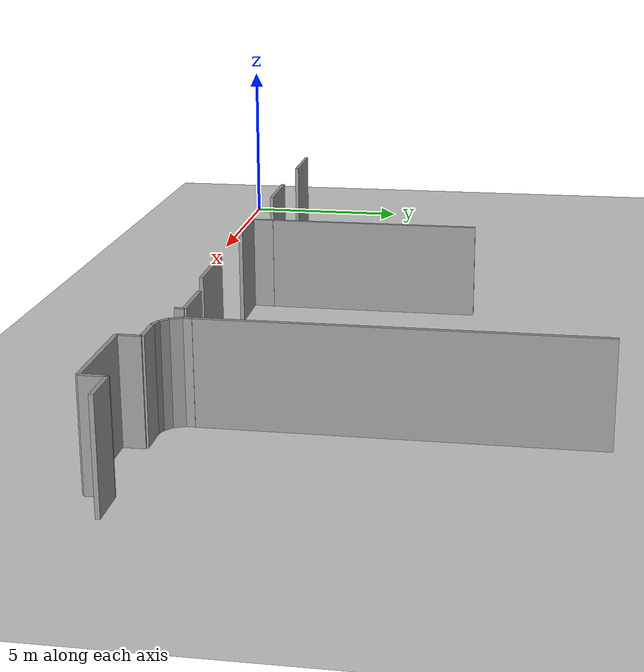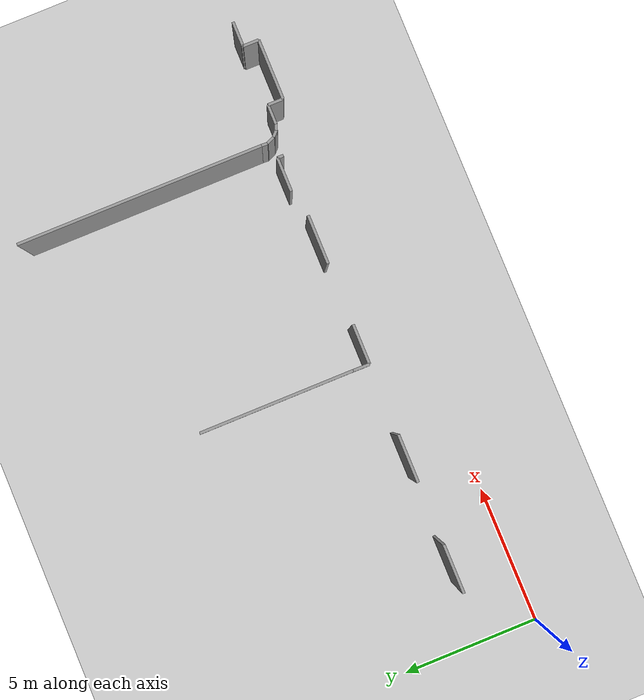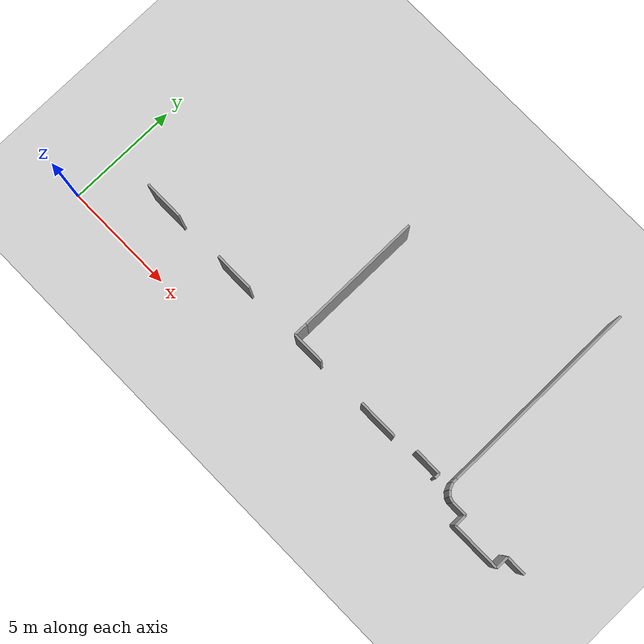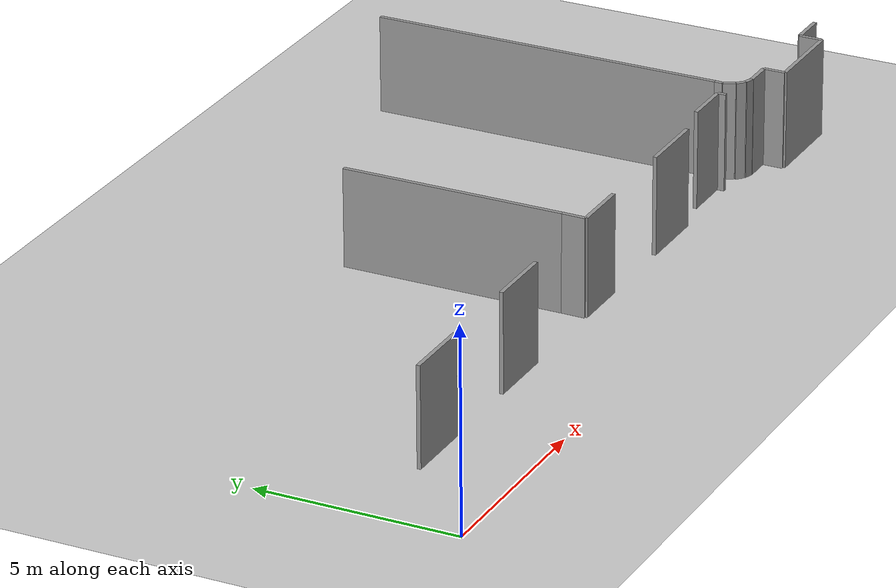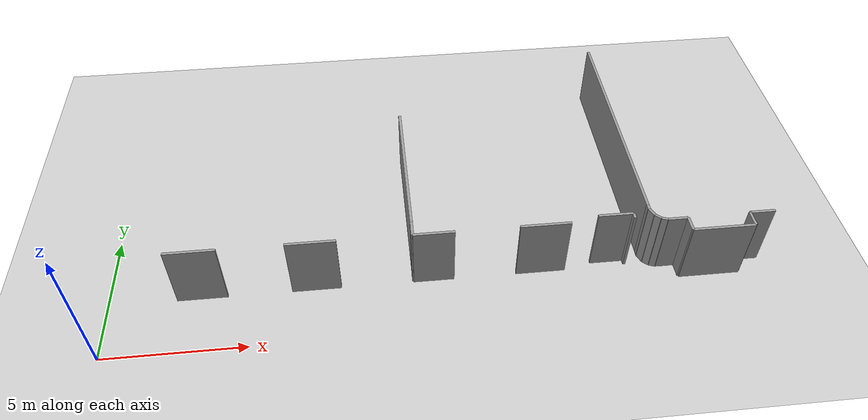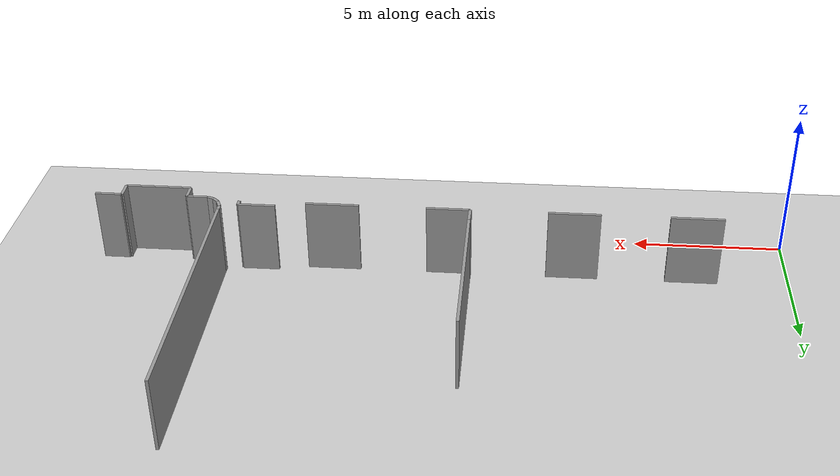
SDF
<sdf version="1.6">
 <world name="default">
  <model name="ground_plane">
   <static>1</static>
   <link name="link">
    <collision name="collision">
     <geometry><plane><normal>0 0 1</normal><size>100 100</size></plane></geometry>
     <surface><friction><ode><mu>100</mu><mu2>50</mu2></ode></friction></surface>
    </collision>
    <visual name="visual">
     <cast_shadows>0</cast_shadows>
     <geometry><plane><normal>0 0 1</normal><size>100 100</size></plane></geometry>
     <material>
      <script><uri>file://media/materials/scripts/gazebo.material</uri><name>Gazebo/Grey</name></script>
     </material>
    </visual>
   </link>
  </model>
  <model name="0510032267_A_40_1_101">
   <static>1</static>
   <link name="Wall_250">
    <collision name="Wall_250_Collision">
     <geometry><box><size>1.73644514198 0.1 2.5</size></box></geometry>
     <pose>0.868222570991 0 1.25 0 0 0</pose>
    </collision>
    <visual name="Wall_250_Visual">
     <pose>0.868222570991 0 1.25 0 0 0</pose>
     <geometry><box><size>1.73644514198 0.1 2.5</size></box></geometry>
     <material>
      <script><uri>file://media/materials/scripts/gazebo.material</uri><name>Gazebo/Grey</name></script>
      <ambient>1 1 1 1</ambient>
     </material>
    </visual>
    <pose>55.9069507368 -31.4609954314 0 0 0 3.14159265359</pose>
   </link>
   <link name="Wall_251">
    <collision name="Wall_251_Collision">
     <geometry><box><size>1.75436366987 0.1 2.5</size></box></geometry>
     <pose>0.877181834934 0 1.25 0 0 0</pose>
    </collision>
    <visual name="Wall_251_Visual">
     <pose>0.877181834934 0 1.25 0 0 0</pose>
     <geometry><box><size>1.75436366987 0.1 2.5</size></box></geometry>
     <material>
      <script><uri>file://media/materials/scripts/gazebo.material</uri><name>Gazebo/Grey</name></script>
      <ambient>1 1 1 1</ambient>
     </material>
    </visual>
    <pose>51.9217938861 -31.4609954314 0 0 0 3.14159265359</pose>
   </link>
   <link name="Wall_257">
    <collision name="Wall_257_Collision">
     <geometry><box><size>5.58765781966 0.1 2.5</size></box></geometry>
     <pose>2.79382890983 0 1.25 0 0 0</pose>
    </collision>
    <visual name="Wall_257_Visual">
     <pose>2.79382890983 0 1.25 0 0 0</pose>
     <geometry><box><size>5.58765781966 0.1 2.5</size></box></geometry>
     <material>
      <script><uri>file://media/materials/scripts/gazebo.material</uri><name>Gazebo/Grey</name></script>
      <ambient>1 1 1 1</ambient>
     </material>
    </visual>
    <pose>58.4795938467 -30.8710819105 0 0 0 1.57079632679</pose>
   </link>
   <link name="Wall_263">
    <collision name="Wall_263_Collision">
     <geometry><box><size>1.23701383285 0.1 2.5</size></box></geometry>
     <pose>0.618506916425 0 1.25 0 0 0</pose>
    </collision>
    <visual name="Wall_263_Visual">
     <pose>0.618506916425 0 1.25 0 0 0</pose>
     <geometry><box><size>1.23701383285 0.1 2.5</size></box></geometry>
     <material>
      <script><uri>file://media/materials/scripts/gazebo.material</uri><name>Gazebo/Grey</name></script>
      <ambient>1 1 1 1</ambient>
     </material>
    </visual>
    <pose>64.914124502 -31.244829361 0 0 0 0.0</pose>
   </link>
   <link name="Wall_264">
    <collision name="Wall_264_Collision">
     <geometry><box><size>0.219470196151 0.1 2.5</size></box></geometry>
     <pose>0.109735098075 0 1.25 0 0 0</pose>
    </collision>
    <visual name="Wall_264_Visual">
     <pose>0.109735098075 0 1.25 0 0 0</pose>
     <geometry><box><size>0.219470196151 0.1 2.5</size></box></geometry>
     <material>
      <script><uri>file://media/materials/scripts/gazebo.material</uri><name>Gazebo/Grey</name></script>
      <ambient>1 1 1 1</ambient>
     </material>
    </visual>
    <pose>66.1511383348 -31.244829361 0 0 0 -1.57079632679</pose>
   </link>
   <link name="Wall_265">
    <collision name="Wall_265_Collision">
     <geometry><box><size>1.78168624785 0.1 2.5</size></box></geometry>
     <pose>0.890843123924 0 1.25 0 0 0</pose>
    </collision>
    <visual name="Wall_265_Visual">
     <pose>0.890843123924 0 1.25 0 0 0</pose>
     <geometry><box><size>1.78168624785 0.1 2.5</size></box></geometry>
     <material>
      <script><uri>file://media/materials/scripts/gazebo.material</uri><name>Gazebo/Grey</name></script>
      <ambient>1 1 1 1</ambient>
     </material>
    </visual>
    <pose>63.9372470279 -31.4642995571 0 0 0 3.14159265359</pose>
   </link>
   <link name="Wall_266">
    <collision name="Wall_266_Collision">
     <geometry><box><size>1.45127367692 0.1 2.5</size></box></geometry>
     <pose>0.72563683846 0 1.25 0 0 0</pose>
    </collision>
    <visual name="Wall_266_Visual">
     <pose>0.72563683846 0 1.25 0 0 0</pose>
     <geometry><box><size>1.45127367692 0.1 2.5</size></box></geometry>
     <material>
      <script><uri>file://media/materials/scripts/gazebo.material</uri><name>Gazebo/Grey</name></script>
      <ambient>1 1 1 1</ambient>
     </material>
    </visual>
    <pose>59.9215905553 -31.4642995571 0 0 0 3.14159265359</pose>
   </link>
   <link name="Wall_267">
    <collision name="Wall_267_Collision">
     <geometry><box><size>0.593290180558 0.1 2.5</size></box></geometry>
     <pose>0.296645090279 0 1.25 0 0 0</pose>
    </collision>
    <visual name="Wall_267_Visual">
     <pose>0.296645090279 0 1.25 0 0 0</pose>
     <geometry><box><size>0.593290180558 0.1 2.5</size></box></geometry>
     <material>
      <script><uri>file://media/materials/scripts/gazebo.material</uri><name>Gazebo/Grey</name></script>
      <ambient>1 1 1 1</ambient>
     </material>
    </visual>
    <pose>58.4703168784 -31.4642995571 0 0 0 1.55515921241</pose>
   </link>
   <link name="Wall_413">
    <collision name="Wall_413_Collision">
     <geometry><box><size>8.95405359038 0.1 2.5</size></box></geometry>
     <pose>4.47702679519 0 1.25 0 0 0</pose>
    </collision>
    <visual name="Wall_413_Visual">
     <pose>4.47702679519 0 1.25 0 0 0</pose>
     <geometry><box><size>8.95405359038 0.1 2.5</size></box></geometry>
     <material>
      <script><uri>file://media/materials/scripts/gazebo.material</uri><name>Gazebo/Grey</name></script>
      <ambient>1 1 1 1</ambient>
     </material>
    </visual>
    <pose>66.74931217 -30.9001836331 0 0 0 1.57079632679</pose>
   </link>
   <link name="Wall_440">
    <collision name="Wall_440_Collision">
     <geometry><box><size>0.863393464185 0.1 2.5</size></box></geometry>
     <pose>0.431696732093 0 1.25 0 0 0</pose>
    </collision>
    <visual name="Wall_440_Visual">
     <pose>0.431696732093 0 1.25 0 0 0</pose>
     <geometry><box><size>0.863393464185 0.1 2.5</size></box></geometry>
     <material>
      <script><uri>file://media/materials/scripts/gazebo.material</uri><name>Gazebo/Grey</name></script>
      <ambient>1 1 1 1</ambient>
     </material>
    </visual>
    <pose>71.0614503841 -31.6084102707 0 0 0 3.14159265359</pose>
   </link>
   <link name="Wall_441">
    <collision name="Wall_441_Collision">
     <geometry><box><size>0.0397765902694 0.1 2.5</size></box></geometry>
     <pose>0.0198882951347 0 1.25 0 0 0</pose>
    </collision>
    <visual name="Wall_441_Visual">
     <pose>0.0198882951347 0 1.25 0 0 0</pose>
     <geometry><box><size>0.0397765902694 0.1 2.5</size></box></geometry>
     <material>
      <script><uri>file://media/materials/scripts/gazebo.material</uri><name>Gazebo/Grey</name></script>
      <ambient>1 1 1 1</ambient>
     </material>
    </visual>
    <pose>70.1980569199 -31.6084102707 0 0 0 3.14159265359</pose>
   </link>
   <link name="Wall_442">
    <collision name="Wall_442_Collision">
     <geometry><box><size>0.577967835607 0.1 2.5</size></box></geometry>
     <pose>0.288983917804 0 1.25 0 0 0</pose>
    </collision>
    <visual name="Wall_442_Visual">
     <pose>0.288983917804 0 1.25 0 0 0</pose>
     <geometry><box><size>0.577967835607 0.1 2.5</size></box></geometry>
     <material>
      <script><uri>file://media/materials/scripts/gazebo.material</uri><name>Gazebo/Grey</name></script>
      <ambient>1 1 1 1</ambient>
     </material>
    </visual>
    <pose>70.1582803297 -31.6084102707 0 0 0 -1.57079632679</pose>
   </link>
   <link name="Wall_443">
    <collision name="Wall_443_Collision">
     <geometry><box><size>2.19991231359 0.1 2.5</size></box></geometry>
     <pose>1.09995615679 0 1.25 0 0 0</pose>
    </collision>
    <visual name="Wall_443_Visual">
     <pose>1.09995615679 0 1.25 0 0 0</pose>
     <geometry><box><size>2.19991231359 0.1 2.5</size></box></geometry>
     <material>
      <script><uri>file://media/materials/scripts/gazebo.material</uri><name>Gazebo/Grey</name></script>
      <ambient>1 1 1 1</ambient>
     </material>
    </visual>
    <pose>70.1582803297 -32.1863781064 0 0 0 3.14159265359</pose>
   </link>
   <link name="Wall_444">
    <collision name="Wall_444_Collision">
     <geometry><box><size>0.550899421143 0.1 2.5</size></box></geometry>
     <pose>0.275449710571 0 1.25 0 0 0</pose>
    </collision>
    <visual name="Wall_444_Visual">
     <pose>0.275449710571 0 1.25 0 0 0</pose>
     <geometry><box><size>0.550899421143 0.1 2.5</size></box></geometry>
     <material>
      <script><uri>file://media/materials/scripts/gazebo.material</uri><name>Gazebo/Grey</name></script>
      <ambient>1 1 1 1</ambient>
     </material>
    </visual>
    <pose>67.9583680161 -32.1863781064 0 0 0 1.57079632679</pose>
   </link>
   <link name="Wall_445">
    <collision name="Wall_445_Collision">
     <geometry><box><size>0.709243291672 0.1 2.5</size></box></geometry>
     <pose>0.354621645836 0 1.25 0 0 0</pose>
    </collision>
    <visual name="Wall_445_Visual">
     <pose>0.354621645836 0 1.25 0 0 0</pose>
     <geometry><box><size>0.709243291672 0.1 2.5</size></box></geometry>
     <material>
      <script><uri>file://media/materials/scripts/gazebo.material</uri><name>Gazebo/Grey</name></script>
      <ambient>1 1 1 1</ambient>
     </material>
    </visual>
    <pose>67.9583680161 -31.6354786852 0 0 0 3.14159265359</pose>
   </link>
   <link name="Wall_446">
    <collision name="Wall_446_Collision">
     <geometry><box><size>0.220267919186 0.1 2.5</size></box></geometry>
     <pose>0.110133959593 0 1.25 0 0 0</pose>
    </collision>
    <visual name="Wall_446_Visual">
     <pose>0.110133959593 0 1.25 0 0 0</pose>
     <geometry><box><size>0.220267919186 0.1 2.5</size></box></geometry>
     <material>
      <script><uri>file://media/materials/scripts/gazebo.material</uri><name>Gazebo/Grey</name></script>
      <ambient>1 1 1 1</ambient>
     </material>
    </visual>
    <pose>67.2491247244 -31.6354786852 0 0 0 2.79977180181</pose>
   </link>
   <link name="Wall_447">
    <collision name="Wall_447_Collision">
     <geometry><box><size>0.245298508023 0.1 2.5</size></box></geometry>
     <pose>0.122649254012 0 1.25 0 0 0</pose>
    </collision>
    <visual name="Wall_447_Visual">
     <pose>0.122649254012 0 1.25 0 0 0</pose>
     <geometry><box><size>0.245298508023 0.1 2.5</size></box></geometry>
     <material>
      <script><uri>file://media/materials/scripts/gazebo.material</uri><name>Gazebo/Grey</name></script>
      <ambient>1 1 1 1</ambient>
     </material>
    </visual>
    <pose>67.0416002135 -31.5616441838 0 0 0 2.38000823607</pose>
   </link>
   <link name="Wall_448">
    <collision name="Wall_448_Collision">
     <geometry><box><size>0.3070759172 0.1 2.5</size></box></geometry>
     <pose>0.1535379586 0 1.25 0 0 0</pose>
    </collision>
    <visual name="Wall_448_Visual">
     <pose>0.1535379586 0 1.25 0 0 0</pose>
     <geometry><box><size>0.3070759172 0.1 2.5</size></box></geometry>
     <material>
      <script><uri>file://media/materials/scripts/gazebo.material</uri><name>Gazebo/Grey</name></script>
      <ambient>1 1 1 1</ambient>
     </material>
    </visual>
    <pose>66.8640669975 -31.3923712821 0 0 0 1.98296980157</pose>
   </link>
   <link name="Wall_449">
    <collision name="Wall_449_Collision">
     <geometry><box><size>0.210990395051 0.1 2.5</size></box></geometry>
     <pose>0.105495197526 0 1.25 0 0 0</pose>
    </collision>
    <visual name="Wall_449_Visual">
     <pose>0.105495197526 0 1.25 0 0 0</pose>
     <geometry><box><size>0.210990395051 0.1 2.5</size></box></geometry>
     <material>
      <script><uri>file://media/materials/scripts/gazebo.material</uri><name>Gazebo/Grey</name></script>
      <ambient>1 1 1 1</ambient>
     </material>
    </visual>
    <pose>66.7410518557 -31.1110122697 0 0 0 1.53163612769</pose>
   </link>
   <pose>-47.8 33.6752466975 0 0 0 0</pose>
  </model>
 </world>
</sdf>
